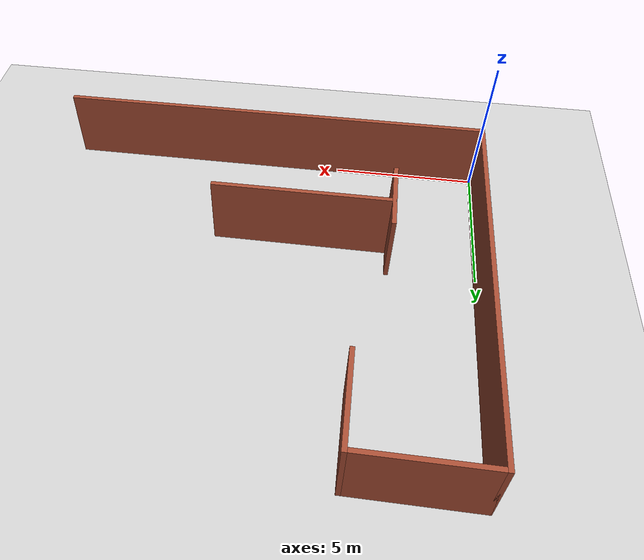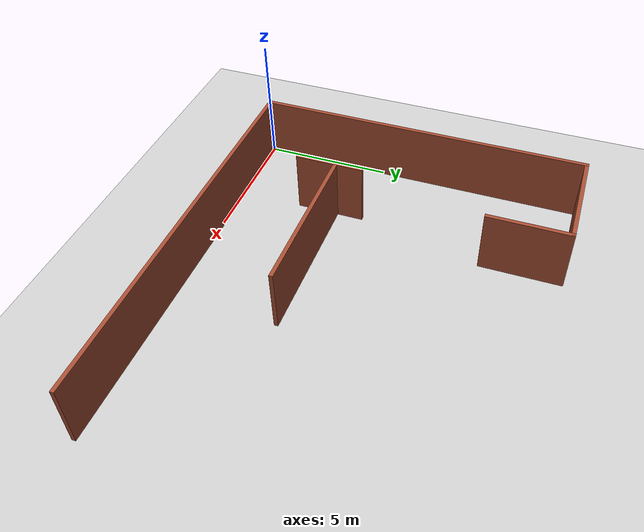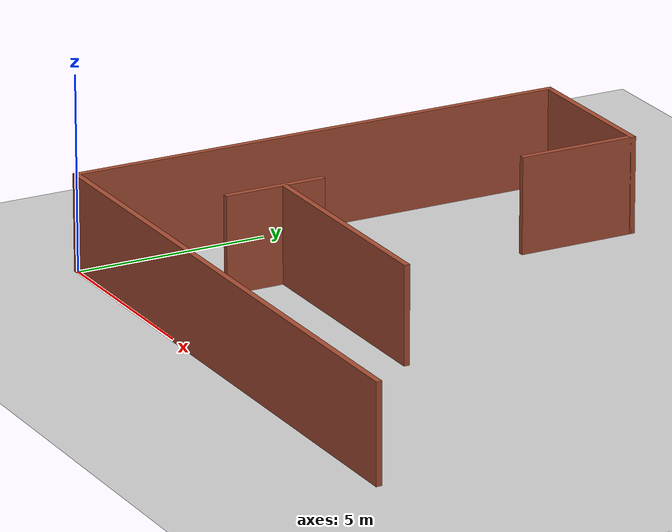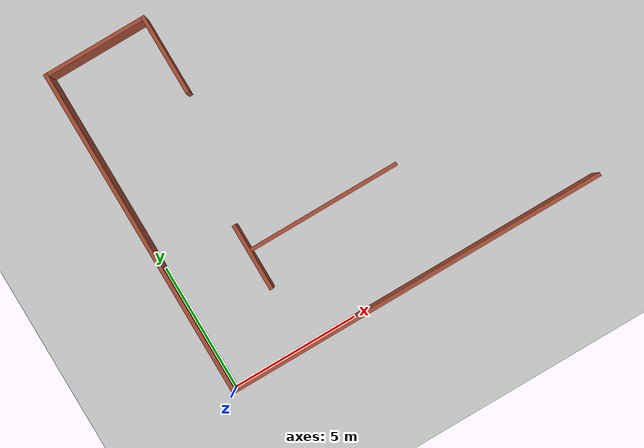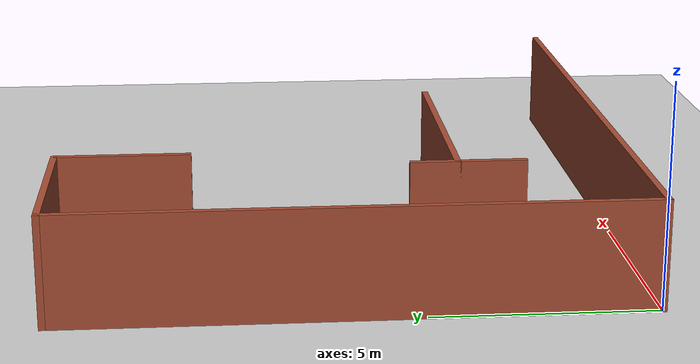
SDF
<sdf version="1.6">
 <world name="default">
  <light name="sun" type="directional">
   <pose>0 0 10 0 -0 0</pose>
   <diffuse>0.8 0.8 0.8 1</diffuse>
   <specular>0.2 0.2 0.2 1</specular>
   <attenuation>
    <range>1000</range>
    <constant>0.9</constant>
    <linear>0.01</linear>
    <quadratic>0.001</quadratic>
   </attenuation>
   <direction>-0.5 0.1 -0.9</direction>
  </light>
  <model name="ground_plane">
   <static>1</static>
   <link name="link">
    <collision name="collision">
     <geometry><plane><normal>0 0 1</normal><size>100 100</size></plane></geometry>
     <surface>
      <contact><collide_bitmask>65535</collide_bitmask></contact>
      <friction><ode><mu>100</mu><mu2>50</mu2></ode></friction>
     </surface>
    </collision>
    <visual name="visual">
     <cast_shadows>0</cast_shadows>
     <geometry><plane><normal>0 0 1</normal><size>100 100</size></plane></geometry>
     <material>
      <script><uri>file://media/materials/scripts/gazebo.material</uri><name>Gazebo/Grey</name></script>
     </material>
    </visual>
   </link>
  </model>
  <gravity>0 0 -9.8</gravity>
  <magnetic_field>6e-06 2.3e-05 -4.2e-05</magnetic_field>
  <atmosphere type="adiabatic"/>
  <physics name="default_physics" default="0" type="ode">
   <max_step_size>0.001</max_step_size>
   <real_time_factor>1</real_time_factor>
   <real_time_update_rate>1000</real_time_update_rate>
  </physics>
  <scene><ambient>0.4 0.4 0.4 1</ambient><background>0.7 0.7 0.7 1</background><shadows>1</shadows></scene>
  <audio><device>default</device></audio>
  <spherical_coordinates>
   <surface_model>EARTH_WGS84</surface_model>
   <latitude_deg>0</latitude_deg>
   <longitude_deg>0</longitude_deg>
   <elevation>0</elevation>
   <heading_deg>0</heading_deg>
  </spherical_coordinates>
  <model name="OGU_SAMPLE">
   <pose>7.5 6.5 0 0 -0 0</pose>
   <link name="Wall_1">
    <collision name="Wall_1_Collision">
     <geometry><box><size>15.15 0.15 2.5</size></box></geometry>
     <pose>0 0 1.25 0 -0 0</pose>
    </collision>
    <visual name="Wall_1_Visual">
     <pose>0 0 1.25 0 -0 0</pose>
     <geometry><box><size>15.15 0.15 2.5</size></box></geometry>
     <material>
      <script><uri>file://media/materials/scripts/gazebo.material</uri><name>Gazebo/Bricks</name></script>
      <ambient>1 1 1 1</ambient>
     </material>
     <meta><layer>0</layer></meta>
    </visual>
    <pose>0 -6.5 0 0 -0 0</pose>
   </link>
   <link name="Wall_11">
    <collision name="Wall_11_Collision">
     <geometry><box><size>2.65 0.15 2.5</size></box></geometry>
     <pose>0 0 1.25 0 -0 0</pose>
    </collision>
    <visual name="Wall_11_Visual">
     <pose>0 0 1.25 0 -0 0</pose>
     <geometry><box><size>2.65 0.15 2.5</size></box></geometry>
     <material>
      <script><uri>file://media/materials/scripts/gazebo.material</uri><name>Gazebo/Bricks</name></script>
      <ambient>1 1 1 1</ambient>
     </material>
     <meta><layer>0</layer></meta>
    </visual>
    <pose>-4.5 -2.75 0 0 -0 -1.5708</pose>
   </link>
   <link name="Wall_13">
    <collision name="Wall_13_Collision">
     <geometry><box><size>3.15 0.15 2.5</size></box></geometry>
     <pose>0 0 1.25 0 -0 0</pose>
    </collision>
    <visual name="Wall_13_Visual">
     <pose>0 0 1.25 0 -0 0</pose>
     <geometry><box><size>3.15 0.15 2.5</size></box></geometry>
     <material>
      <script><uri>file://media/materials/scripts/gazebo.material</uri><name>Gazebo/Bricks</name></script>
      <ambient>1 1 1 1</ambient>
     </material>
     <meta><layer>0</layer></meta>
    </visual>
    <pose>-3.5 5 0 0 -0 -1.5708</pose>
   </link>
   <link name="Wall_3">
    <collision name="Wall_3_Collision">
     <geometry><box><size>13.15 0.15 2.5</size></box></geometry>
     <pose>0 0 1.25 0 -0 0</pose>
    </collision>
    <visual name="Wall_3_Visual">
     <pose>0 0 1.25 0 -0 0</pose>
     <geometry><box><size>13.15 0.15 2.5</size></box></geometry>
     <material>
      <script><uri>file://media/materials/scripts/gazebo.material</uri><name>Gazebo/Bricks</name></script>
      <ambient>1 1 1 1</ambient>
     </material>
     <meta><layer>0</layer></meta>
    </visual>
    <pose>-7.5 0 0 0 -0 -1.5708</pose>
   </link>
   <link name="Wall_7">
    <collision name="Wall_7_Collision">
     <geometry><box><size>4.15 0.15 2.5</size></box></geometry>
     <pose>0 0 1.25 0 -0 0</pose>
    </collision>
    <visual name="Wall_7_Visual">
     <pose>0 0 1.25 0 -0 0</pose>
     <geometry><box><size>4.15 0.15 2.5</size></box></geometry>
     <material>
      <script><uri>file://media/materials/scripts/gazebo.material</uri><name>Gazebo/Bricks</name></script>
      <ambient>1 1 1 1</ambient>
     </material>
     <meta><layer>0</layer></meta>
    </visual>
    <pose>-5.5 6.5 0 0 -0 0</pose>
   </link>
   <link name="Wall_9">
    <collision name="Wall_9_Collision">
     <geometry><box><size>6.15 0.15 2.5</size></box></geometry>
     <pose>0 0 1.25 0 -0 0</pose>
    </collision>
    <visual name="Wall_9_Visual">
     <pose>0 0 1.25 0 -0 0</pose>
     <geometry><box><size>6.15 0.15 2.5</size></box></geometry>
     <material>
      <script><uri>file://media/materials/scripts/gazebo.material</uri><name>Gazebo/Bricks</name></script>
      <ambient>1 1 1 1</ambient>
     </material>
     <meta><layer>0</layer></meta>
    </visual>
    <pose>-1.5 -2.5 0 0 -0 0</pose>
   </link>
   <static>1</static>
  </model>
 </world>
</sdf>
